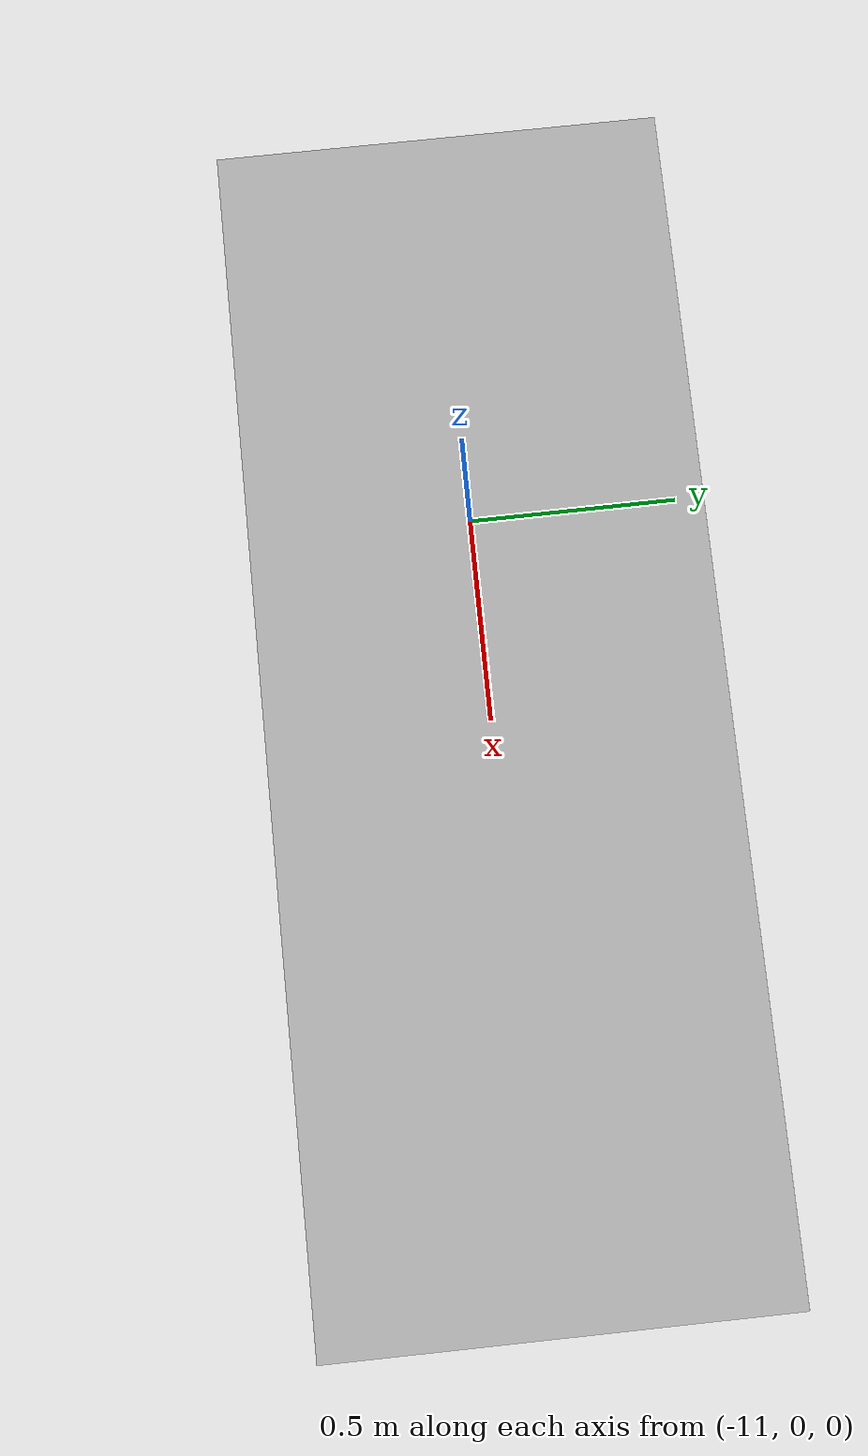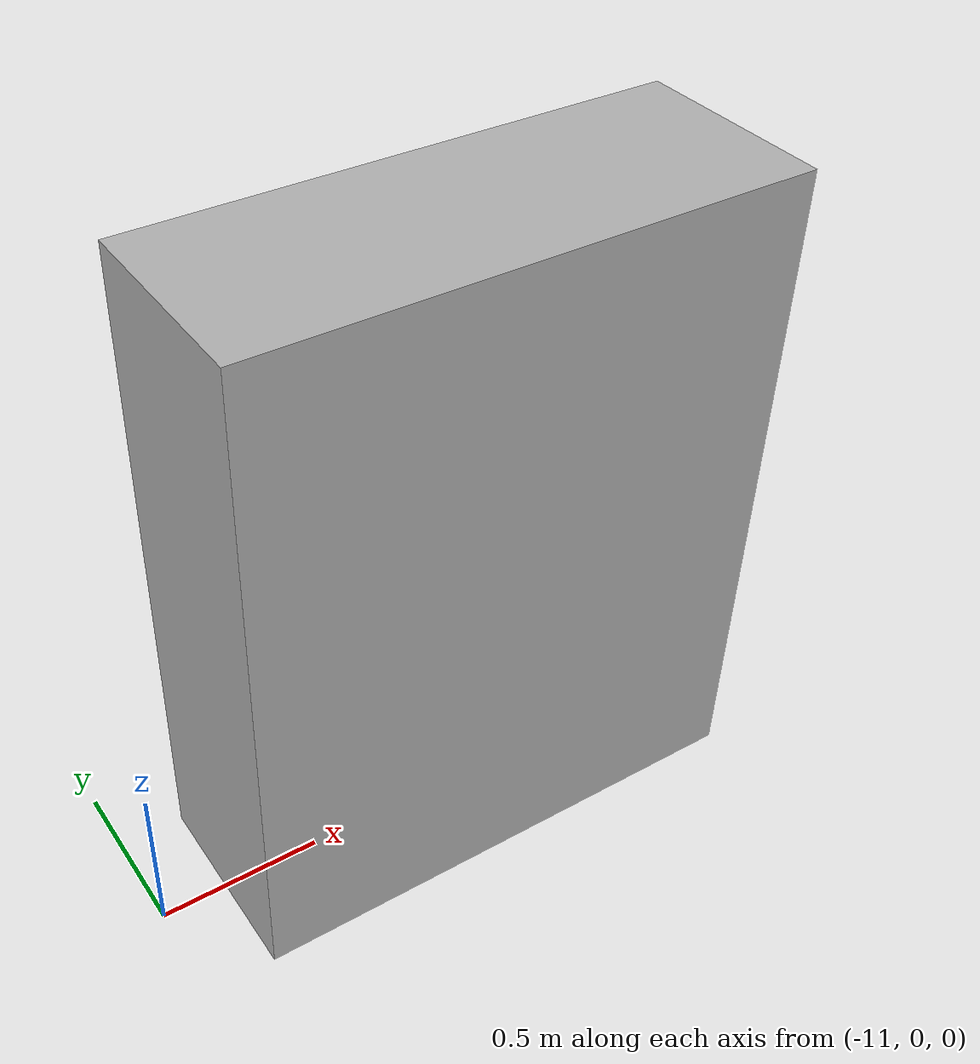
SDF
<?xml version='1.0' encoding='ASCII'?>
<sdf version='1.7'>
   <world name='my_world'>
    <physics type="ode">
      <max_step_size>0.004</max_step_size>
      <real_time_factor>1.0</real_time_factor>
      <real_time_update_rate>250</real_time_update_rate>
    </physics>
    <plugin name='gz::sim::systems::Physics' filename='gz-sim-physics-system'/>
    <plugin name='gz::sim::systems::UserCommands' filename='gz-sim-user-commands-system'/>
    <plugin name='gz::sim::systems::SceneBroadcaster' filename='gz-sim-scene-broadcaster-system'/>
    <plugin name='gz::sim::systems::Contact' filename='gz-sim-contact-system'/>
    <plugin name='gz::sim::systems::Imu' filename='gz-sim-imu-system'/>
    <plugin name='gz::sim::systems::AirPressure' filename='gz-sim-air-pressure-system'/>
    <plugin name='gz::sim::systems::ApplyLinkWrench' filename='gz-sim-apply-link-wrench-system'/>
    <plugin name='gz::sim::systems::NavSat' filename='gz-sim-navsat-system'/>
    <plugin name='gz::sim::systems::Sensors' filename='gz-sim-sensors-system'>
      <render_engine>ogre2</render_engine>
    </plugin>
    <gui fullscreen='false'>

      <!-- 3D scene -->
      <plugin filename="MinimalScene" name="3D View">
        <gz-gui>
          <title>3D View</title>
          <property type="bool" key="showTitleBar">false</property>
          <property type="string" key="state">docked</property>
        </gz-gui>

        <engine>ogre2</engine>
        <scene>scene</scene>
        <ambient_light>0.4 0.4 0.4</ambient_light>
        <background_color>0.8 0.8 0.8</background_color>
        <camera_pose>-6 0 6 0 0.5 0</camera_pose>
        <camera_clip>
          <near>0.25</near>
          <far>25000</far>
        </camera_clip>
      </plugin>

      <!-- Plugins that add functionality to the scene -->
      <plugin filename="EntityContextMenuPlugin" name="Entity context menu">
        <gz-gui>
          <property key="state" type="string">floating</property>
          <property key="width" type="double">5</property>
          <property key="height" type="double">5</property>
          <property key="showTitleBar" type="bool">false</property>
        </gz-gui>
      </plugin>
      <plugin filename="GzSceneManager" name="Scene Manager">
        <gz-gui>
          <property key="resizable" type="bool">false</property>
          <property key="width" type="double">5</property>
          <property key="height" type="double">5</property>
          <property key="state" type="string">floating</property>
          <property key="showTitleBar" type="bool">false</property>
        </gz-gui>
      </plugin>
      <plugin filename="InteractiveViewControl" name="Interactive view control">
        <gz-gui>
          <property key="resizable" type="bool">false</property>
          <property key="width" type="double">5</property>
          <property key="height" type="double">5</property>
          <property key="state" type="string">floating</property>
          <property key="showTitleBar" type="bool">false</property>
        </gz-gui>
      </plugin>
      <plugin filename="CameraTracking" name="Camera Tracking">
        <gz-gui>
          <property key="resizable" type="bool">false</property>
          <property key="width" type="double">5</property>
          <property key="height" type="double">5</property>
          <property key="state" type="string">floating</property>
          <property key="showTitleBar" type="bool">false</property>
        </gz-gui>
      </plugin>
      <plugin filename="MarkerManager" name="Marker manager">
        <gz-gui>
          <property key="resizable" type="bool">false</property>
          <property key="width" type="double">5</property>
          <property key="height" type="double">5</property>
          <property key="state" type="string">floating</property>
          <property key="showTitleBar" type="bool">false</property>
        </gz-gui>
      </plugin>
      <plugin filename="SelectEntities" name="Select Entities">
        <gz-gui>
          <anchors target="Select entities">
            <line own="right" target="right"/>
            <line own="top" target="top"/>
          </anchors>
          <property key="resizable" type="bool">false</property>
          <property key="width" type="double">5</property>
          <property key="height" type="double">5</property>
          <property key="state" type="string">floating</property>
          <property key="showTitleBar" type="bool">false</property>
        </gz-gui>
      </plugin>
      <plugin filename="VisualizationCapabilities" name="Visualization Capabilities">
        <gz-gui>
          <property key="resizable" type="bool">false</property>
          <property key="width" type="double">5</property>
          <property key="height" type="double">5</property>
          <property key="state" type="string">floating</property>
          <property key="showTitleBar" type="bool">false</property>
        </gz-gui>
      </plugin>
      <plugin filename="Spawn" name="Spawn Entities">
        <gz-gui>
          <anchors target="Select entities">
            <line own="right" target="right"/>
            <line own="top" target="top"/>
          </anchors>
          <property key="resizable" type="bool">false</property>
          <property key="width" type="double">5</property>
          <property key="height" type="double">5</property>
          <property key="state" type="string">floating</property>
          <property key="showTitleBar" type="bool">false</property>
        </gz-gui>
      </plugin>

      <plugin name='World control' filename='WorldControl'>
        <gz-gui>
          <title>World control</title>
          <property type='bool' key='showTitleBar'>0</property>
          <property type='bool' key='resizable'>0</property>
          <property type='double' key='height'>72</property>
          <property type='double' key='width'>121</property>
          <property type='double' key='z'>1</property>
          <property type='string' key='state'>floating</property>
          <anchors target='3D View'>
            <line own='left' target='left'/>
            <line own='bottom' target='bottom'/>
          </anchors>
        </gz-gui>
        <play_pause>1</play_pause>
        <step>1</step>
        <start_paused>1</start_paused>
      </plugin>
      <plugin name='World stats' filename='WorldStats'>
        <gz-gui>
          <title>World stats</title>
          <property type='bool' key='showTitleBar'>0</property>
          <property type='bool' key='resizable'>0</property>
          <property type='double' key='height'>110</property>
          <property type='double' key='width'>290</property>
          <property type='double' key='z'>1</property>
          <property type='string' key='state'>floating</property>
          <anchors target='3D View'>
            <line own='right' target='right'/>
            <line own='bottom' target='bottom'/>
          </anchors>
        </gz-gui>
        <sim_time>1</sim_time>
        <real_time>1</real_time>
        <real_time_factor>1</real_time_factor>
        <iterations>1</iterations>
      </plugin>
      <plugin name='Entity tree' filename='EntityTree'/>
    </gui>
    <gravity>0 0 -9.8</gravity>
    <magnetic_field>6e-06 2.3e-05 -4.2e-05</magnetic_field>
    <atmosphere type='adiabatic'/>
    <light name='sunUTC' type='directional'>
      <pose>0 0 500 0 -0 0</pose>
      <cast_shadows>false</cast_shadows>
      <intensity>1</intensity>
      <direction>0.001 0.625 -0.78</direction>
      <diffuse>0.904 0.904 0.904 1</diffuse>
      <specular>0.271 0.271 0.271 1</specular>
      <attenuation>
        <range>2000</range>
        <linear>0</linear>
        <constant>1</constant>
        <quadratic>0</quadratic>
      </attenuation>
    </light>
    <include>
      <name>shelf_2</name>
      <pose> -10 0 0 0 0 3.14 </pose>
      <uri>
        https://fuel.gazebosim.org/1.0/MovAi/models/shelf_big
      </uri>
    </include>
  </world>
</sdf>

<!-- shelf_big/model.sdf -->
<sdf version="1.7">
  <model name="shelf_big">
    <static>true</static>
    <link name="link">
      <pose>0 0 1.0 0 0 0</pose>
      <visual name="visual">
        <geometry>
          <box>
            <size>1.6 0.6 2.0</size>
          </box>
        </geometry>
        <material>
          <ambient>0.7 0.7 0.7 1</ambient>
          <diffuse>0.7 0.7 0.7 1</diffuse>
        </material>
      </visual>
      <collision name="collision">
        <geometry>
          <box>
            <size>1.6 0.6 2.0</size>
          </box>
        </geometry>
      </collision>
    </link>
  </model>
</sdf>
